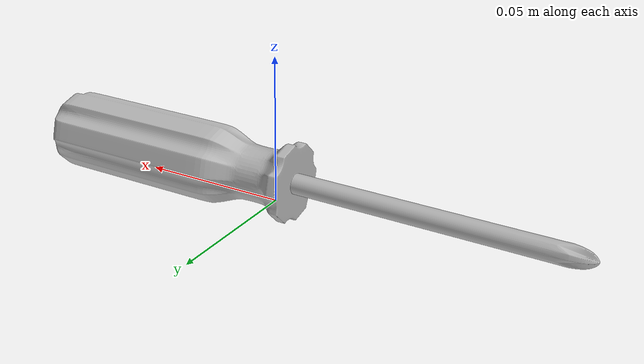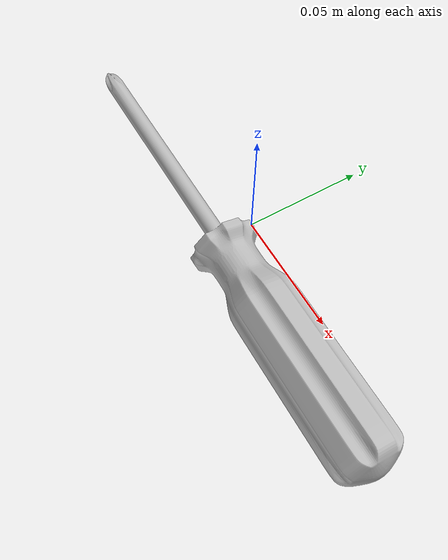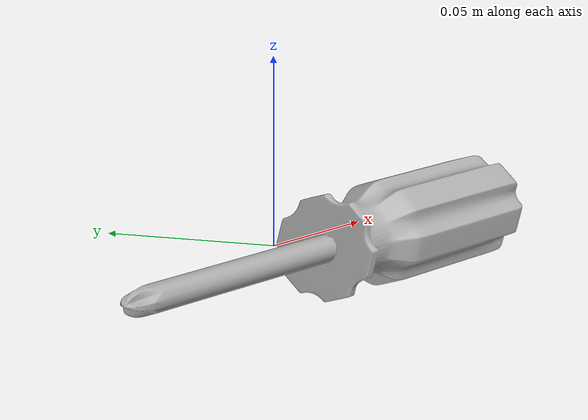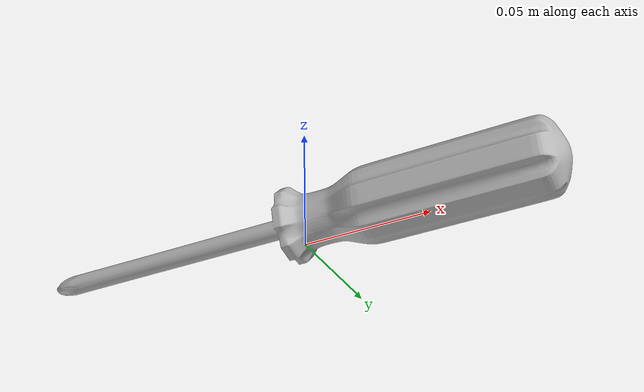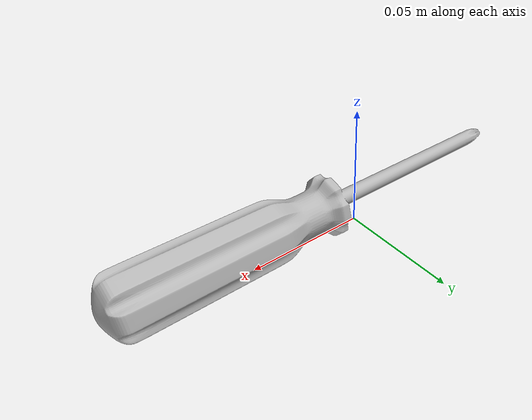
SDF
<?xml version="1.0" ?>
<sdf version="1.5">
  <model name="screwdriver">
    <static>false</static>
    <link name="link">
      <collision name="collision">
        <geometry>
          <mesh>
            <uri>/home/melanie/kinova_ws/src/ros_kortex/kortex_gazebo/models/screwdriver/meshes/screwdriver.dae</uri>
            <scale>0.01 0.01 0.01</scale>
          </mesh>
        </geometry>
         <surface>
          <contact>
            <!-- Red Pine coefficients for longitudinal axis of the wood
                 according to:
                 http://www.fpl.fs.fed.us/documnts/fplgtr/fplgtr113/ch04.pdf -->
            <poissons_ratio>0.347</poissons_ratio>
            <elastic_modulus>8.8e+09</elastic_modulus>
            <ode>
              <kp>100000</kp>
              <kd>100</kd>
              <max_vel>100.0</max_vel>
              <min_depth>0.001</min_depth>
            </ode>
          </contact>
          <friction>
            <torsional>
              <coefficient>1.0</coefficient>
              <use_patch_radius>0</use_patch_radius>
              <surface_radius>0.01</surface_radius>
            </torsional>
          </friction>
        </surface>
      </collision>
      <visual name="visual">
        <geometry>
          <mesh>
            <uri>/home/melanie/kinova_ws/src/ros_kortex/kortex_gazebo/models/screwdriver/meshes/screwdriver.dae</uri>
            <scale>0.01 0.01 0.01</scale>
          </mesh>
        </geometry>
      </visual>
    </link>
  </model>
</sdf>
